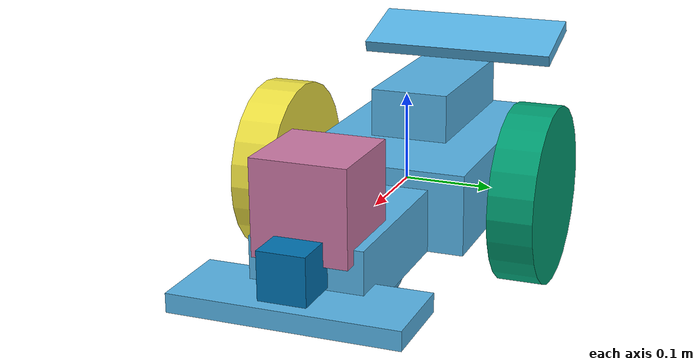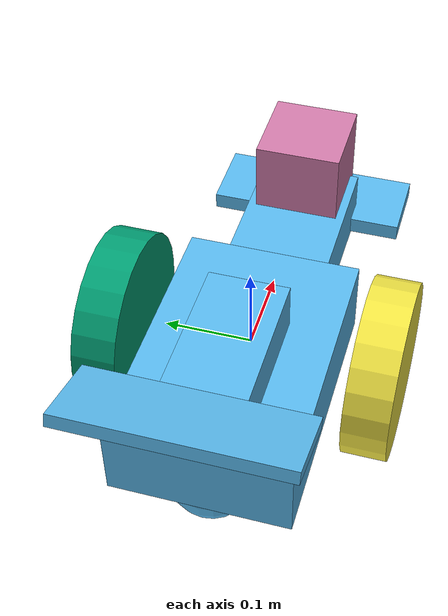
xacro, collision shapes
<?xml version='1.0'?>

<robot name="udacity_bot" xmlns:xacro="http://www.ros.org/wiki/xacro">
  <xacro:include filename="$(find udacity_bot)/urdf/my_udacity_bot.gazebo" />

  <link name="robot_footprint"></link>

  <joint name="robot_footprint_joint" type="fixed">
    <origin xyz="0 0 0" rpy="0 0 0" />
    <parent link="robot_footprint"/>
    <child link="chassis" />
  </joint>

  <link name='chassis'>
    <pose>0 0 0.1 0 0 0</pose>

    <inertial>
      <mass value="15.0"/>
      <origin xyz="0.0 0 0" rpy=" 0 0 0"/>
      <inertia
          ixx="0.1" ixy="0" ixz="0"
          iyy="0.1" iyz="0"
          izz="0.1"
      />
    </inertial>

    <collision name='chassis_collision'>
      <origin xyz="-.05 0 0" rpy=" 0 0 0"/>
      <geometry>
        <box size=".3 .2 .09"/>
      </geometry>
    </collision>

    <visual name='chassis_visual'>
      <origin xyz="-.05 0 0" rpy=" 0 0 0"/>
      <geometry>
        <box size=".3 .2 .09"/>
      </geometry>
    </visual>

    <collision name='back_chassis_collision'>
      <origin xyz="-.1 0 .045" rpy=" 0 0 0"/>
      <geometry>
        <box size=".19 .09 .11"/>
      </geometry>
    </collision>

    <visual name='back_chassis_visual'>
      <origin xyz="-.1 0 .045" rpy=" 0 0 0"/>
      <geometry>
        <box size=".2 .1 .12"/>
      </geometry>
    </visual>

    <visual name='wing_visual'>
      <origin xyz="-.22 0 0.12" rpy="0 0.3 0"/>
      <geometry>
        <box size=".1 .25 .015"/>
      </geometry>
    </visual>

    <collision name='wing_collision'>
      <origin xyz="-.22 0 0.12" rpy="0 0.3 0"/>
      <geometry>
        <box size=".09 .24 .014"/>
      </geometry>
    </collision>

    <collision name='front_chassis_collision'>
      <origin xyz=".18 0 -.01" rpy=" 0 0 0"/>
      <geometry>
        <box size=".21 .12 .07"/>
      </geometry>
    </collision>

    <visual name='front_chassis_visual'>
      <origin xyz=".18 0 -.01" rpy=" 0 0 0"/>
      <geometry>
        <box size=".22 .13 .08"/>
      </geometry>
    </visual>

    <visual name='bumper_visual'>
      <origin xyz=".3 0 -.03" rpy=" 0 0 0"/>
      <geometry>
        <box size=".1 .25 .03"/>
      </geometry>
    </visual>

    <collision name='bumper_collision'>
      <origin xyz=".3 0 -.03" rpy=" 0 0 0"/>
      <geometry>
        <box size=".09 .24 .02"/>
      </geometry>
    </collision>

	<!--////////////////////////////// CASTER //////////////////////////////-->
    <collision name='back_caster_collision'>
      <origin xyz="-0.15 0 -0.05" rpy=" 0 0 0"/>
      <geometry>
        <sphere radius="0.049"/>
      </geometry>
    </collision>

    <visual name='back_caster_visual'>
      <origin xyz="-0.15 0 -0.05" rpy=" 0 0 0"/>
      <geometry>
        <sphere radius="0.05"/>
      </geometry>
    </visual>

    <collision name='front_caster_collision'>
      <origin xyz="0.15 0 -0.05" rpy=" 0 0 0"/>
      <geometry>
        <sphere radius="0.049"/>
      </geometry>
    </collision>

    <visual name='front_caster_visual'>
      <origin xyz="0.15 0 -0.05" rpy=" 0 0 0"/>
      <geometry>
        <sphere radius="0.05"/>
      </geometry>
    </visual>

  </link>

  <!--////////////////////////////// WHEELS //////////////////////////////-->
  <link name='left_wheel'>
  	<inertial>
      <mass value="5.0"/>
      <origin xyz="0 0 0" rpy="0 1.5705 1.5707"/>
      <inertia
        ixx="0.1" ixy="0" ixz="0"
        iyy="0.1" iyz="0"
        izz="0.1"
      />
    </inertial>

    <visual name='left_wheel_visual'>
      <origin xyz="0 0 0" rpy="0 1.5707 1.5707"/>
      <geometry>
        <cylinder radius="0.1" length="0.05"/>
      </geometry>
    </visual>

    <collision name='left_wheel_collision'>
      <origin xyz="0 0 0" rpy="0 1.5705 1.5707"/>
      <geometry>
        <cylinder radius="0.1" length="0.05"/>
      </geometry>
    </collision>
  </link>

  <link name='right_wheel'>
  	<inertial>
      <mass value="5.0"/>
      <origin xyz="0 0 0" rpy="0 1.5705 1.5707"/>
      <inertia
        ixx="0.1" ixy="0" ixz="0"
        iyy="0.1" iyz="0"
        izz="0.1"
      />
    </inertial>

    <visual name='right_wheel_visual'>
      <origin xyz="0 0 0" rpy="0 1.5707 1.5707"/>
      <geometry>
        <cylinder radius="0.1" length="0.05"/>
      </geometry>
    </visual>

    <collision name='right_wheel_collision'>
      <origin xyz="0 0 0" rpy="0 1.5705 1.5707"/>
      <geometry>
      	<cylinder radius="0.1" length="0.05"/>
      </geometry>
    </collision>
  </link>

  <joint type="continuous" name="left_wheel_hinge">
    <origin xyz="0 0.15 0" rpy="0 0 0"/>
    <child link="left_wheel"/>
    <parent link="chassis"/>
    <axis xyz="0 1 0" rpy="0 0 0"/>
    <limit effort="10000" velocity="1000"/>
    <dynamics damping="1.0" friction="1.0"/>
  </joint>

  <joint type="continuous" name="right_wheel_hinge">
    <origin xyz="0 -0.15 0" rpy="0 0 0"/>
    <child link="right_wheel"/>
    <parent link="chassis"/>
    <axis xyz="0 1 0" rpy="0 0 0"/>
    <limit effort="10000" velocity="1000"/>
    <dynamics damping="1.0" friction="1.0"/>
  </joint>

  <!--////////////////////////////// CAMERA //////////////////////////////-->
  <link name='camera'>
    <inertial>
      <mass value="0.1"/>
      <origin xyz="0 0 0" rpy="0 0 0"/>
      <inertia
        ixx="1e-6" ixy="0" ixz="0"
        iyy="1e-6" iyz="0"
        izz="1e-6"
      />
    </inertial>

    <visual name='camera_visual'>
      <origin xyz="0 0 0" rpy="0 0 0"/>
      <geometry>
        <mesh filename="package://udacity_bot/meshes/kinect.dae" scale="50 50 50"/>
      </geometry>
    </visual>

    <collision name='camera_collision'>
      <origin xyz="0 0 0" rpy="0 0 0"/>
      <geometry>
        <box size="0.05 0.05 0.05"/>
      </geometry>
    </collision>
  </link>

  <joint type='fixed' name='camera_joint'>
    <origin xyz="0.315 0 0.01" rpy="0 0 0"/>
    <child link="camera"/>
    <parent link="chassis"/>
  </joint>

  <link name="camera_rgbd_frame"></link>

  <joint name="camera_rgbd_joint" type="fixed">
    <origin xyz="0 0 0" rpy="-${pi/2} 0 -${pi/2}"/>
    <parent link="camera"/>
    <child link="camera_rgbd_frame"/>
  </joint>
  <!--////////////////////////////// LASER RANGEFINDER //////////////////////////////-->
  <link name='hokuyo'>
    <inertial>
      <mass value="0.1"/>
      <origin xyz="0 0 0" rpy="0 0 0"/>
      <inertia
         ixx="1e-6" ixy="0" ixz="0"
         iyy="1e-6" iyz="0"
         izz="1e-6"
       />
    </inertial>

    <visual name='hokuyo_visual'>
      <origin xyz="0 0 0" rpy="0 0 0"/>
      <geometry>
        <mesh filename="package://udacity_bot/meshes/hokuyo.dae"/>
      </geometry>
    </visual>

    <collision name='hokuyo_collision'>
      <origin xyz="0 0 0" rpy="0 0 0"/>
      <geometry>
        <box size="0.1 0.1 0.1"/>
      </geometry>
    </collision>
  </link>

  <joint type='fixed' name='hokuyo_joint'>
    <origin xyz="0.25 0 0.06" rpy="0 0 0"/>
    <child link="hokuyo"/>
    <parent link="chassis"/>
  </joint>

</robot>
